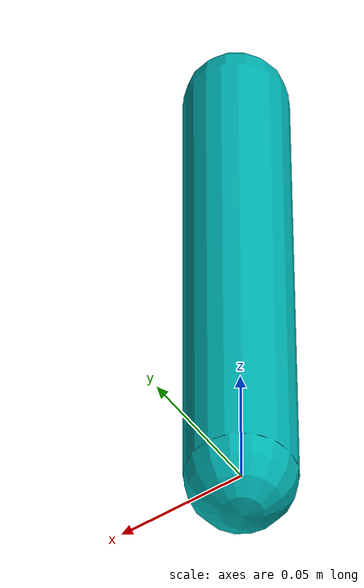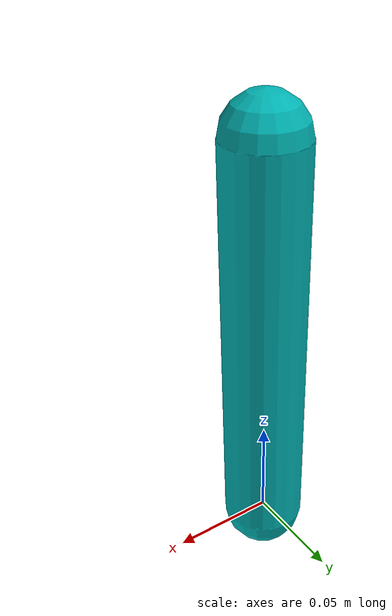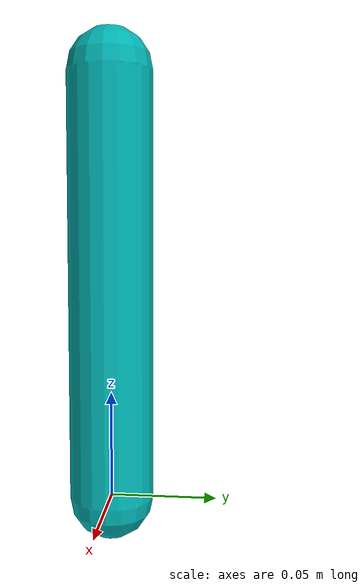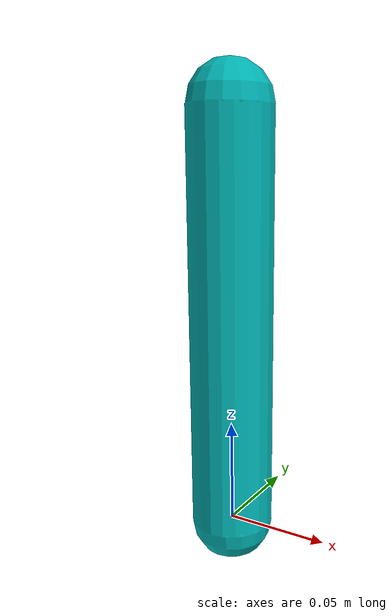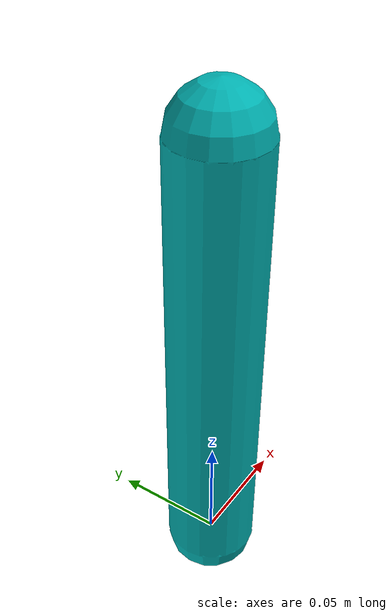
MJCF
<mujoco model="single link pendulum">
	<compiler inertiafromgeom="true" angle="radian"/>
	<default>
		<geom contype="0" friction="1 0.1 0.1" rgba="0.7 0.7 0 1"/>
		<default class="STS3215">
			<joint damping="0.60" frictionloss="0.052" armature="0.028"/>
			<position kp="998.22" kv="2.731" forcerange="-2.94 2.94"/>
		</default>
		<default class="backlash">
			<!-- +/- 0.87° of backlash -->
			<joint damping="0.01" frictionloss="0" armature="0.01" limited="true" range="-0.015184364492350668 0.015184364492350668"/>
		</default>
	</default>
	<option gravity="0 0 -9.80665" integrator="RK4" timestep="0.001"/>

	<worldbody>
        <body name="pole" pos="0 0 0">
			<!-- Motor joint (actuated) -->
			<joint name="motor" class="STS3215" axis="0 1 0" pos="0 0 0" limited="false" type="hinge"/>
			<!-- Backlash joint (limited free play) -->
			<joint name="backlash_joint" class="backlash" axis="0 1 0" pos="0 0 0" type="hinge"/>
			<!-- Assuming a 200mm pole, 20mm radius, and 1270 kg/m^3 density (PETG) -->
            <geom fromto="0 0 0 0.001 0 0.2" name="cpole" rgba="0 0.7 0.7 1" size="0.02 0.1" density="1270" type="capsule"/>
        </body>
	</worldbody>

	<actuator>
		<position class="STS3215" joint="motor" forcerange="-3.35 3.35" ctrlrange="-3.14159 3.14159"/>
	</actuator>
</mujoco>
